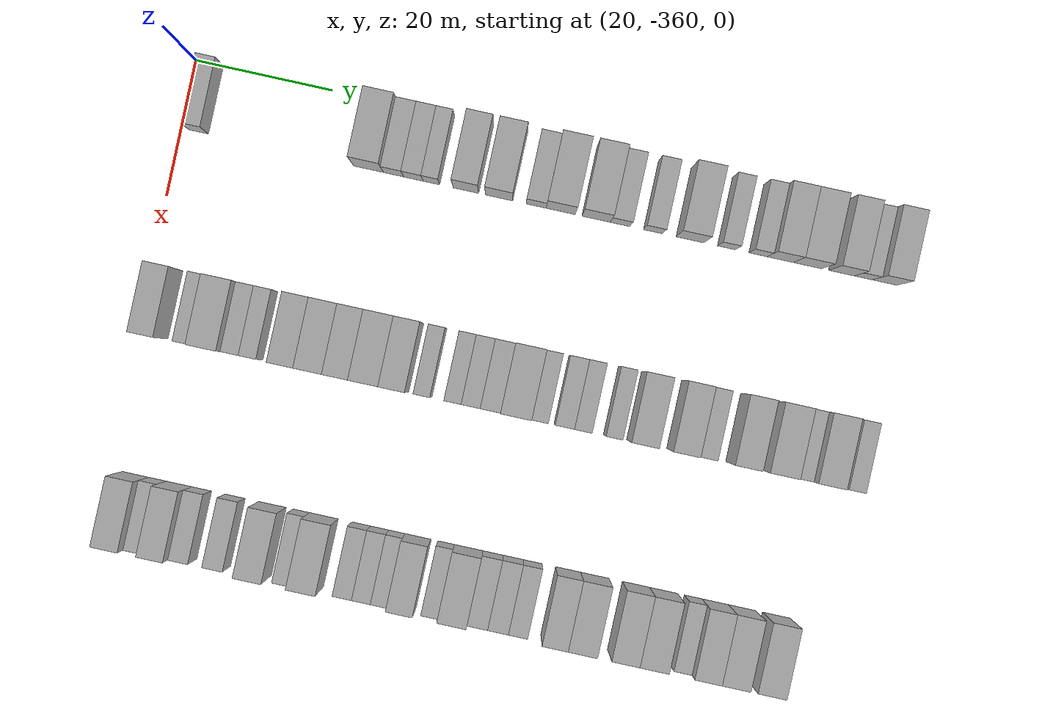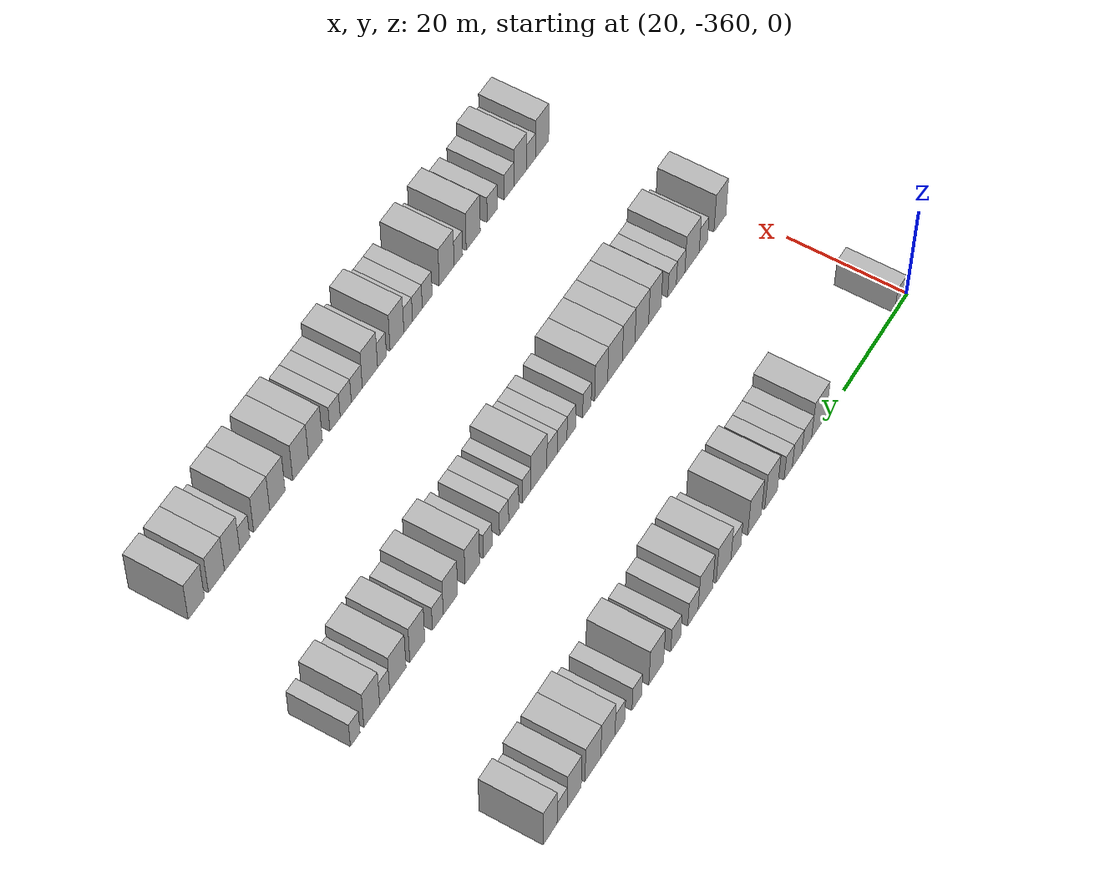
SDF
<sdf version="1.6">
 <world name="default">
  <model name="building_21">
   <static>1</static>
   <pose>25.0000 -357.4171 0 0.000000 0.000000 0.000000</pose>
   <link name="link">
    <pose>0 0 3.00 0 0 0</pose>
    <collision name="collision"><geometry><box><size>10.0000 2.8803 6.0000</size></box></geometry></collision>
    <visual name="visual">
     <cast_shadows>0</cast_shadows>
     <geometry><box><size>10.0000 2.8803 6.0000</size></box></geometry>
     <material>
      <script>
       <uri>model://HANNAS_wall/materials/scripts</uri>
       <uri>model://HANNAS_wall/materials/textures</uri>
       <name>vrc/HANNAS_wall</name>
      </script>
     </material>
    </visual>
   </link>
  </model>
  <model name="building_22">
   <static>1</static>
   <pose>25.0000 -332.4077 0 0.000000 0.000000 0.000000</pose>
   <link name="link">
    <pose>0 0 4.50 0 0 0</pose>
    <collision name="collision"><geometry><box><size>10.0000 4.3794 9.0000</size></box></geometry></collision>
    <visual name="visual">
     <cast_shadows>0</cast_shadows>
     <geometry><box><size>10.0000 4.3794 9.0000</size></box></geometry>
     <material>
      <script>
       <uri>model://HANNAS_wall/materials/scripts</uri>
       <uri>model://HANNAS_wall/materials/textures</uri>
       <name>vrc/HANNAS_wall</name>
      </script>
     </material>
    </visual>
   </link>
  </model>
  <model name="building_23">
   <static>1</static>
   <pose>25.0000 -328.7465 0 0.000000 0.000000 0.000000</pose>
   <link name="link">
    <pose>0 0 3.00 0 0 0</pose>
    <collision name="collision"><geometry><box><size>10.0000 2.9431 6.0000</size></box></geometry></collision>
    <visual name="visual">
     <cast_shadows>0</cast_shadows>
     <geometry><box><size>10.0000 2.9431 6.0000</size></box></geometry>
     <material>
      <script>
       <uri>model://HANNAS_wall/materials/scripts</uri>
       <uri>model://HANNAS_wall/materials/textures</uri>
       <name>vrc/HANNAS_wall</name>
      </script>
     </material>
    </visual>
   </link>
  </model>
  <model name="building_24">
   <static>1</static>
   <pose>25.0000 -325.8399 0 0.000000 0.000000 0.000000</pose>
   <link name="link">
    <pose>0 0 3.00 0 0 0</pose>
    <collision name="collision"><geometry><box><size>10.0000 2.8702 6.0000</size></box></geometry></collision>
    <visual name="visual">
     <cast_shadows>0</cast_shadows>
     <geometry><box><size>10.0000 2.8702 6.0000</size></box></geometry>
     <material>
      <script>
       <uri>model://HANNAS_wall/materials/scripts</uri>
       <uri>model://HANNAS_wall/materials/textures</uri>
       <name>vrc/HANNAS_wall</name>
      </script>
     </material>
    </visual>
   </link>
  </model>
  <model name="building_25">
   <static>1</static>
   <pose>25.0000 -323.1905 0 0.000000 0.000000 0.000000</pose>
   <link name="link">
    <pose>0 0 3.00 0 0 0</pose>
    <collision name="collision"><geometry><box><size>10.0000 2.4285 6.0000</size></box></geometry></collision>
    <visual name="visual">
     <cast_shadows>0</cast_shadows>
     <geometry><box><size>10.0000 2.4285 6.0000</size></box></geometry>
     <material>
      <script>
       <uri>model://HANNAS_wall/materials/scripts</uri>
       <uri>model://HANNAS_wall/materials/textures</uri>
       <name>vrc/HANNAS_wall</name>
      </script>
     </material>
    </visual>
   </link>
  </model>
  <model name="building_26">
   <static>1</static>
   <pose>25.0000 -318.1049 0 0.000000 0.000000 0.000000</pose>
   <link name="link">
    <pose>0 0 4.50 0 0 0</pose>
    <collision name="collision"><geometry><box><size>10.0000 3.7427 9.0000</size></box></geometry></collision>
    <visual name="visual">
     <cast_shadows>0</cast_shadows>
     <geometry><box><size>10.0000 3.7427 9.0000</size></box></geometry>
     <material>
      <script>
       <uri>model://HANNAS_wall/materials/scripts</uri>
       <uri>model://HANNAS_wall/materials/textures</uri>
       <name>vrc/HANNAS_wall</name>
      </script>
     </material>
    </visual>
   </link>
  </model>
  <model name="building_27">
   <static>1</static>
   <pose>25.0000 -313.2380 0 0.000000 0.000000 0.000000</pose>
   <link name="link">
    <pose>0 0 4.50 0 0 0</pose>
    <collision name="collision"><geometry><box><size>10.0000 3.9911 9.0000</size></box></geometry></collision>
    <visual name="visual">
     <cast_shadows>0</cast_shadows>
     <geometry><box><size>10.0000 3.9911 9.0000</size></box></geometry>
     <material>
      <script>
       <uri>model://HANNAS_wall/materials/scripts</uri>
       <uri>model://HANNAS_wall/materials/textures</uri>
       <name>vrc/HANNAS_wall</name>
      </script>
     </material>
    </visual>
   </link>
  </model>
  <model name="building_28">
   <static>1</static>
   <pose>25.0000 -307.7797 0 0.000000 0.000000 0.000000</pose>
   <link name="link">
    <pose>0 0 3.00 0 0 0</pose>
    <collision name="collision"><geometry><box><size>10.0000 2.9255 6.0000</size></box></geometry></collision>
    <visual name="visual">
     <cast_shadows>0</cast_shadows>
     <geometry><box><size>10.0000 2.9255 6.0000</size></box></geometry>
     <material>
      <script>
       <uri>model://HANNAS_wall/materials/scripts</uri>
       <uri>model://HANNAS_wall/materials/textures</uri>
       <name>vrc/HANNAS_wall</name>
      </script>
     </material>
    </visual>
   </link>
  </model>
  <model name="building_29">
   <static>1</static>
   <pose>25.0000 -304.1932 0 0.000000 0.000000 0.000000</pose>
   <link name="link">
    <pose>0 0 4.50 0 0 0</pose>
    <collision name="collision"><geometry><box><size>10.0000 4.2475 9.0000</size></box></geometry></collision>
    <visual name="visual">
     <cast_shadows>0</cast_shadows>
     <geometry><box><size>10.0000 4.2475 9.0000</size></box></geometry>
     <material>
      <script>
       <uri>model://HANNAS_wall/materials/scripts</uri>
       <uri>model://HANNAS_wall/materials/textures</uri>
       <name>vrc/HANNAS_wall</name>
      </script>
     </material>
    </visual>
   </link>
  </model>
  <model name="building_30">
   <static>1</static>
   <pose>25.0000 -298.9964 0 0.000000 0.000000 0.000000</pose>
   <link name="link">
    <pose>0 0 4.50 0 0 0</pose>
    <collision name="collision"><geometry><box><size>10.0000 4.1460 9.0000</size></box></geometry></collision>
    <visual name="visual">
     <cast_shadows>0</cast_shadows>
     <geometry><box><size>10.0000 4.1460 9.0000</size></box></geometry>
     <material>
      <script>
       <uri>model://HANNAS_wall/materials/scripts</uri>
       <uri>model://HANNAS_wall/materials/textures</uri>
       <name>vrc/HANNAS_wall</name>
      </script>
     </material>
    </visual>
   </link>
  </model>
  <model name="building_31">
   <static>1</static>
   <pose>25.0000 -295.4681 0 0.000000 0.000000 0.000000</pose>
   <link name="link">
    <pose>0 0 3.00 0 0 0</pose>
    <collision name="collision"><geometry><box><size>10.0000 2.9106 6.0000</size></box></geometry></collision>
    <visual name="visual">
     <cast_shadows>0</cast_shadows>
     <geometry><box><size>10.0000 2.9106 6.0000</size></box></geometry>
     <material>
      <script>
       <uri>model://HANNAS_wall/materials/scripts</uri>
       <uri>model://HANNAS_wall/materials/textures</uri>
       <name>vrc/HANNAS_wall</name>
      </script>
     </material>
    </visual>
   </link>
  </model>
  <model name="building_32">
   <static>1</static>
   <pose>25.0000 -290.6160 0 0.000000 0.000000 0.000000</pose>
   <link name="link">
    <pose>0 0 3.00 0 0 0</pose>
    <collision name="collision"><geometry><box><size>10.0000 2.7937 6.0000</size></box></geometry></collision>
    <visual name="visual">
     <cast_shadows>0</cast_shadows>
     <geometry><box><size>10.0000 2.7937 6.0000</size></box></geometry>
     <material>
      <script>
       <uri>model://HANNAS_wall/materials/scripts</uri>
       <uri>model://HANNAS_wall/materials/textures</uri>
       <name>vrc/HANNAS_wall</name>
      </script>
     </material>
    </visual>
   </link>
  </model>
  <model name="building_33">
   <static>1</static>
   <pose>25.0000 -285.1777 0 0.000000 0.000000 0.000000</pose>
   <link name="link">
    <pose>0 0 4.50 0 0 0</pose>
    <collision name="collision"><geometry><box><size>10.0000 4.0829 9.0000</size></box></geometry></collision>
    <visual name="visual">
     <cast_shadows>0</cast_shadows>
     <geometry><box><size>10.0000 4.0829 9.0000</size></box></geometry>
     <material>
      <script>
       <uri>model://HANNAS_wall/materials/scripts</uri>
       <uri>model://HANNAS_wall/materials/textures</uri>
       <name>vrc/HANNAS_wall</name>
      </script>
     </material>
    </visual>
   </link>
  </model>
  <model name="building_34">
   <static>1</static>
   <pose>25.0000 -279.8225 0 0.000000 0.000000 0.000000</pose>
   <link name="link">
    <pose>0 0 3.00 0 0 0</pose>
    <collision name="collision"><geometry><box><size>10.0000 2.6276 6.0000</size></box></geometry></collision>
    <visual name="visual">
     <cast_shadows>0</cast_shadows>
     <geometry><box><size>10.0000 2.6276 6.0000</size></box></geometry>
     <material>
      <script>
       <uri>model://HANNAS_wall/materials/scripts</uri>
       <uri>model://HANNAS_wall/materials/textures</uri>
       <name>vrc/HANNAS_wall</name>
      </script>
     </material>
    </visual>
   </link>
  </model>
  <model name="building_35">
   <static>1</static>
   <pose>25.0000 -275.1801 0 0.000000 0.000000 0.000000</pose>
   <link name="link">
    <pose>0 0 3.00 0 0 0</pose>
    <collision name="collision"><geometry><box><size>10.0000 2.6573 6.0000</size></box></geometry></collision>
    <visual name="visual">
     <cast_shadows>0</cast_shadows>
     <geometry><box><size>10.0000 2.6573 6.0000</size></box></geometry>
     <material>
      <script>
       <uri>model://HANNAS_wall/materials/scripts</uri>
       <uri>model://HANNAS_wall/materials/textures</uri>
       <name>vrc/HANNAS_wall</name>
      </script>
     </material>
    </visual>
   </link>
  </model>
  <model name="building_36">
   <static>1</static>
   <pose>25.0000 -271.9345 0 0.000000 0.000000 0.000000</pose>
   <link name="link">
    <pose>0 0 4.50 0 0 0</pose>
    <collision name="collision"><geometry><box><size>10.0000 3.8339 9.0000</size></box></geometry></collision>
    <visual name="visual">
     <cast_shadows>0</cast_shadows>
     <geometry><box><size>10.0000 3.8339 9.0000</size></box></geometry>
     <material>
      <script>
       <uri>model://HANNAS_wall/materials/scripts</uri>
       <uri>model://HANNAS_wall/materials/textures</uri>
       <name>vrc/HANNAS_wall</name>
      </script>
     </material>
    </visual>
   </link>
  </model>
  <model name="building_37">
   <static>1</static>
   <pose>25.0000 -267.9023 0 0.000000 0.000000 0.000000</pose>
   <link name="link">
    <pose>0 0 4.50 0 0 0</pose>
    <collision name="collision"><geometry><box><size>10.0000 4.2304 9.0000</size></box></geometry></collision>
    <visual name="visual">
     <cast_shadows>0</cast_shadows>
     <geometry><box><size>10.0000 4.2304 9.0000</size></box></geometry>
     <material>
      <script>
       <uri>model://HANNAS_wall/materials/scripts</uri>
       <uri>model://HANNAS_wall/materials/textures</uri>
       <name>vrc/HANNAS_wall</name>
      </script>
     </material>
    </visual>
   </link>
  </model>
  <model name="building_38">
   <static>1</static>
   <pose>25.0000 -262.9214 0 0.000000 0.000000 0.000000</pose>
   <link name="link">
    <pose>0 0 4.50 0 0 0</pose>
    <collision name="collision"><geometry><box><size>10.0000 3.7315 9.0000</size></box></geometry></collision>
    <visual name="visual">
     <cast_shadows>0</cast_shadows>
     <geometry><box><size>10.0000 3.7315 9.0000</size></box></geometry>
     <material>
      <script>
       <uri>model://HANNAS_wall/materials/scripts</uri>
       <uri>model://HANNAS_wall/materials/textures</uri>
       <name>vrc/HANNAS_wall</name>
      </script>
     </material>
    </visual>
   </link>
  </model>
  <model name="building_39">
   <static>1</static>
   <pose>25.0000 -259.7239 0 0.000000 0.000000 0.000000</pose>
   <link name="link">
    <pose>0 0 3.00 0 0 0</pose>
    <collision name="collision"><geometry><box><size>10.0000 2.6636 6.0000</size></box></geometry></collision>
    <visual name="visual">
     <cast_shadows>0</cast_shadows>
     <geometry><box><size>10.0000 2.6636 6.0000</size></box></geometry>
     <material>
      <script>
       <uri>model://HANNAS_wall/materials/scripts</uri>
       <uri>model://HANNAS_wall/materials/textures</uri>
       <name>vrc/HANNAS_wall</name>
      </script>
     </material>
    </visual>
   </link>
  </model>
  <model name="building_40">
   <static>1</static>
   <pose>25.0000 -256.5775 0 0.000000 0.000000 0.000000</pose>
   <link name="link">
    <pose>0 0 4.50 0 0 0</pose>
    <collision name="collision"><geometry><box><size>10.0000 3.6291 9.0000</size></box></geometry></collision>
    <visual name="visual">
     <cast_shadows>0</cast_shadows>
     <geometry><box><size>10.0000 3.6291 9.0000</size></box></geometry>
     <material>
      <script>
       <uri>model://HANNAS_wall/materials/scripts</uri>
       <uri>model://HANNAS_wall/materials/textures</uri>
       <name>vrc/HANNAS_wall</name>
      </script>
     </material>
    </visual>
   </link>
  </model>
  <model name="building_235">
   <static>1</static>
   <pose>55.0000 -357.1866 0 0.000000 0.000000 0.000000</pose>
   <link name="link">
    <pose>0 0 4.50 0 0 0</pose>
    <collision name="collision"><geometry><box><size>10.0000 3.6692 9.0000</size></box></geometry></collision>
    <visual name="visual">
     <cast_shadows>0</cast_shadows>
     <geometry><box><size>10.0000 3.6692 9.0000</size></box></geometry>
     <material>
      <script>
       <uri>model://HANNAS_wall/materials/scripts</uri>
       <uri>model://HANNAS_wall/materials/textures</uri>
       <name>vrc/HANNAS_wall</name>
      </script>
     </material>
    </visual>
   </link>
  </model>
  <model name="building_236">
   <static>1</static>
   <pose>55.0000 -352.0828 0 0.000000 0.000000 0.000000</pose>
   <link name="link">
    <pose>0 0 3.00 0 0 0</pose>
    <collision name="collision"><geometry><box><size>10.0000 2.5383 6.0000</size></box></geometry></collision>
    <visual name="visual">
     <cast_shadows>0</cast_shadows>
     <geometry><box><size>10.0000 2.5383 6.0000</size></box></geometry>
     <material>
      <script>
       <uri>model://HANNAS_wall/materials/scripts</uri>
       <uri>model://HANNAS_wall/materials/textures</uri>
       <name>vrc/HANNAS_wall</name>
      </script>
     </material>
    </visual>
   </link>
  </model>
  <model name="building_237">
   <static>1</static>
   <pose>55.0000 -348.6517 0 0.000000 0.000000 0.000000</pose>
   <link name="link">
    <pose>0 0 4.50 0 0 0</pose>
    <collision name="collision"><geometry><box><size>10.0000 4.3240 9.0000</size></box></geometry></collision>
    <visual name="visual">
     <cast_shadows>0</cast_shadows>
     <geometry><box><size>10.0000 4.3240 9.0000</size></box></geometry>
     <material>
      <script>
       <uri>model://HANNAS_wall/materials/scripts</uri>
       <uri>model://HANNAS_wall/materials/textures</uri>
       <name>vrc/HANNAS_wall</name>
      </script>
     </material>
    </visual>
   </link>
  </model>
  <model name="building_238">
   <static>1</static>
   <pose>55.0000 -345.2005 0 0.000000 0.000000 0.000000</pose>
   <link name="link">
    <pose>0 0 3.00 0 0 0</pose>
    <collision name="collision"><geometry><box><size>10.0000 2.5784 6.0000</size></box></geometry></collision>
    <visual name="visual">
     <cast_shadows>0</cast_shadows>
     <geometry><box><size>10.0000 2.5784 6.0000</size></box></geometry>
     <material>
      <script>
       <uri>model://HANNAS_wall/materials/scripts</uri>
       <uri>model://HANNAS_wall/materials/textures</uri>
       <name>vrc/HANNAS_wall</name>
      </script>
     </material>
    </visual>
   </link>
  </model>
  <model name="building_239">
   <static>1</static>
   <pose>55.0000 -342.6469 0 0.000000 0.000000 0.000000</pose>
   <link name="link">
    <pose>0 0 3.00 0 0 0</pose>
    <collision name="collision"><geometry><box><size>10.0000 2.5287 6.0000</size></box></geometry></collision>
    <visual name="visual">
     <cast_shadows>0</cast_shadows>
     <geometry><box><size>10.0000 2.5287 6.0000</size></box></geometry>
     <material>
      <script>
       <uri>model://HANNAS_wall/materials/scripts</uri>
       <uri>model://HANNAS_wall/materials/textures</uri>
       <name>vrc/HANNAS_wall</name>
      </script>
     </material>
    </visual>
   </link>
  </model>
  <model name="building_240">
   <static>1</static>
   <pose>55.0000 -337.5148 0 0.000000 0.000000 0.000000</pose>
   <link name="link">
    <pose>0 0 4.50 0 0 0</pose>
    <collision name="collision"><geometry><box><size>10.0000 3.7356 9.0000</size></box></geometry></collision>
    <visual name="visual">
     <cast_shadows>0</cast_shadows>
     <geometry><box><size>10.0000 3.7356 9.0000</size></box></geometry>
     <material>
      <script>
       <uri>model://HANNAS_wall/materials/scripts</uri>
       <uri>model://HANNAS_wall/materials/textures</uri>
       <name>vrc/HANNAS_wall</name>
      </script>
     </material>
    </visual>
   </link>
  </model>
  <model name="building_241">
   <static>1</static>
   <pose>55.0000 -333.6295 0 0.000000 0.000000 0.000000</pose>
   <link name="link">
    <pose>0 0 4.50 0 0 0</pose>
    <collision name="collision"><geometry><box><size>10.0000 4.0349 9.0000</size></box></geometry></collision>
    <visual name="visual">
     <cast_shadows>0</cast_shadows>
     <geometry><box><size>10.0000 4.0349 9.0000</size></box></geometry>
     <material>
      <script>
       <uri>model://HANNAS_wall/materials/scripts</uri>
       <uri>model://HANNAS_wall/materials/textures</uri>
       <name>vrc/HANNAS_wall</name>
      </script>
     </material>
    </visual>
   </link>
  </model>
  <model name="building_242">
   <static>1</static>
   <pose>55.0000 -329.7769 0 0.000000 0.000000 0.000000</pose>
   <link name="link">
    <pose>0 0 4.50 0 0 0</pose>
    <collision name="collision"><geometry><box><size>10.0000 3.6704 9.0000</size></box></geometry></collision>
    <visual name="visual">
     <cast_shadows>0</cast_shadows>
     <geometry><box><size>10.0000 3.6704 9.0000</size></box></geometry>
     <material>
      <script>
       <uri>model://HANNAS_wall/materials/scripts</uri>
       <uri>model://HANNAS_wall/materials/textures</uri>
       <name>vrc/HANNAS_wall</name>
      </script>
     </material>
    </visual>
   </link>
  </model>
  <model name="building_243">
   <static>1</static>
   <pose>55.0000 -325.8154 0 0.000000 0.000000 0.000000</pose>
   <link name="link">
    <pose>0 0 4.50 0 0 0</pose>
    <collision name="collision"><geometry><box><size>10.0000 4.2526 9.0000</size></box></geometry></collision>
    <visual name="visual">
     <cast_shadows>0</cast_shadows>
     <geometry><box><size>10.0000 4.2526 9.0000</size></box></geometry>
     <material>
      <script>
       <uri>model://HANNAS_wall/materials/scripts</uri>
       <uri>model://HANNAS_wall/materials/textures</uri>
       <name>vrc/HANNAS_wall</name>
      </script>
     </material>
    </visual>
   </link>
  </model>
  <model name="building_244">
   <static>1</static>
   <pose>55.0000 -321.8098 0 0.000000 0.000000 0.000000</pose>
   <link name="link">
    <pose>0 0 4.50 0 0 0</pose>
    <collision name="collision"><geometry><box><size>10.0000 3.7587 9.0000</size></box></geometry></collision>
    <visual name="visual">
     <cast_shadows>0</cast_shadows>
     <geometry><box><size>10.0000 3.7587 9.0000</size></box></geometry>
     <material>
      <script>
       <uri>model://HANNAS_wall/materials/scripts</uri>
       <uri>model://HANNAS_wall/materials/textures</uri>
       <name>vrc/HANNAS_wall</name>
      </script>
     </material>
    </visual>
   </link>
  </model>
  <model name="building_245">
   <static>1</static>
   <pose>55.0000 -317.7284 0 0.000000 0.000000 0.000000</pose>
   <link name="link">
    <pose>0 0 3.00 0 0 0</pose>
    <collision name="collision"><geometry><box><size>10.0000 2.4040 6.0000</size></box></geometry></collision>
    <visual name="visual">
     <cast_shadows>0</cast_shadows>
     <geometry><box><size>10.0000 2.4040 6.0000</size></box></geometry>
     <material>
      <script>
       <uri>model://HANNAS_wall/materials/scripts</uri>
       <uri>model://HANNAS_wall/materials/textures</uri>
       <name>vrc/HANNAS_wall</name>
      </script>
     </material>
    </visual>
   </link>
  </model>
  <model name="building_246">
   <static>1</static>
   <pose>55.0000 -313.2908 0 0.000000 0.000000 0.000000</pose>
   <link name="link">
    <pose>0 0 3.00 0 0 0</pose>
    <collision name="collision"><geometry><box><size>10.0000 2.4712 6.0000</size></box></geometry></collision>
    <visual name="visual">
     <cast_shadows>0</cast_shadows>
     <geometry><box><size>10.0000 2.4712 6.0000</size></box></geometry>
     <material>
      <script>
       <uri>model://HANNAS_wall/materials/scripts</uri>
       <uri>model://HANNAS_wall/materials/textures</uri>
       <name>vrc/HANNAS_wall</name>
      </script>
     </material>
    </visual>
   </link>
  </model>
  <model name="building_247">
   <static>1</static>
   <pose>55.0000 -310.6925 0 0.000000 0.000000 0.000000</pose>
   <link name="link">
    <pose>0 0 3.00 0 0 0</pose>
    <collision name="collision"><geometry><box><size>10.0000 2.7253 6.0000</size></box></geometry></collision>
    <visual name="visual">
     <cast_shadows>0</cast_shadows>
     <geometry><box><size>10.0000 2.7253 6.0000</size></box></geometry>
     <material>
      <script>
       <uri>model://HANNAS_wall/materials/scripts</uri>
       <uri>model://HANNAS_wall/materials/textures</uri>
       <name>vrc/HANNAS_wall</name>
      </script>
     </material>
    </visual>
   </link>
  </model>
  <model name="building_248">
   <static>1</static>
   <pose>55.0000 -307.8720 0 0.000000 0.000000 0.000000</pose>
   <link name="link">
    <pose>0 0 3.00 0 0 0</pose>
    <collision name="collision"><geometry><box><size>10.0000 2.9159 6.0000</size></box></geometry></collision>
    <visual name="visual">
     <cast_shadows>0</cast_shadows>
     <geometry><box><size>10.0000 2.9159 6.0000</size></box></geometry>
     <material>
      <script>
       <uri>model://HANNAS_wall/materials/scripts</uri>
       <uri>model://HANNAS_wall/materials/textures</uri>
       <name>vrc/HANNAS_wall</name>
      </script>
     </material>
    </visual>
   </link>
  </model>
  <model name="building_249">
   <static>1</static>
   <pose>55.0000 -304.2131 0 0.000000 0.000000 0.000000</pose>
   <link name="link">
    <pose>0 0 4.50 0 0 0</pose>
    <collision name="collision"><geometry><box><size>10.0000 4.4018 9.0000</size></box></geometry></collision>
    <visual name="visual">
     <cast_shadows>0</cast_shadows>
     <geometry><box><size>10.0000 4.4018 9.0000</size></box></geometry>
     <material>
      <script>
       <uri>model://HANNAS_wall/materials/scripts</uri>
       <uri>model://HANNAS_wall/materials/textures</uri>
       <name>vrc/HANNAS_wall</name>
      </script>
     </material>
    </visual>
   </link>
  </model>
  <model name="building_250">
   <static>1</static>
   <pose>55.0000 -300.7984 0 0.000000 0.000000 0.000000</pose>
   <link name="link">
    <pose>0 0 3.00 0 0 0</pose>
    <collision name="collision"><geometry><box><size>10.0000 2.4277 6.0000</size></box></geometry></collision>
    <visual name="visual">
     <cast_shadows>0</cast_shadows>
     <geometry><box><size>10.0000 2.4277 6.0000</size></box></geometry>
     <material>
      <script>
       <uri>model://HANNAS_wall/materials/scripts</uri>
       <uri>model://HANNAS_wall/materials/textures</uri>
       <name>vrc/HANNAS_wall</name>
      </script>
     </material>
    </visual>
   </link>
  </model>
  <model name="building_251">
   <static>1</static>
   <pose>55.0000 -297.2077 0 0.000000 0.000000 0.000000</pose>
   <link name="link">
    <pose>0 0 3.00 0 0 0</pose>
    <collision name="collision"><geometry><box><size>10.0000 2.7535 6.0000</size></box></geometry></collision>
    <visual name="visual">
     <cast_shadows>0</cast_shadows>
     <geometry><box><size>10.0000 2.7535 6.0000</size></box></geometry>
     <material>
      <script>
       <uri>model://HANNAS_wall/materials/scripts</uri>
       <uri>model://HANNAS_wall/materials/textures</uri>
       <name>vrc/HANNAS_wall</name>
      </script>
     </material>
    </visual>
   </link>
  </model>
  <model name="building_252">
   <static>1</static>
   <pose>55.0000 -294.5745 0 0.000000 0.000000 0.000000</pose>
   <link name="link">
    <pose>0 0 3.00 0 0 0</pose>
    <collision name="collision"><geometry><box><size>10.0000 2.5130 6.0000</size></box></geometry></collision>
    <visual name="visual">
     <cast_shadows>0</cast_shadows>
     <geometry><box><size>10.0000 2.5130 6.0000</size></box></geometry>
     <material>
      <script>
       <uri>model://HANNAS_wall/materials/scripts</uri>
       <uri>model://HANNAS_wall/materials/textures</uri>
       <name>vrc/HANNAS_wall</name>
      </script>
     </material>
    </visual>
   </link>
  </model>
  <model name="building_253">
   <static>1</static>
   <pose>55.0000 -290.1171 0 0.000000 0.000000 0.000000</pose>
   <link name="link">
    <pose>0 0 3.00 0 0 0</pose>
    <collision name="collision"><geometry><box><size>10.0000 2.4018 6.0000</size></box></geometry></collision>
    <visual name="visual">
     <cast_shadows>0</cast_shadows>
     <geometry><box><size>10.0000 2.4018 6.0000</size></box></geometry>
     <material>
      <script>
       <uri>model://HANNAS_wall/materials/scripts</uri>
       <uri>model://HANNAS_wall/materials/textures</uri>
       <name>vrc/HANNAS_wall</name>
      </script>
     </material>
    </visual>
   </link>
  </model>
  <model name="building_254">
   <static>1</static>
   <pose>55.0000 -285.9679 0 0.000000 0.000000 0.000000</pose>
   <link name="link">
    <pose>0 0 4.50 0 0 0</pose>
    <collision name="collision"><geometry><box><size>10.0000 3.8965 9.0000</size></box></geometry></collision>
    <visual name="visual">
     <cast_shadows>0</cast_shadows>
     <geometry><box><size>10.0000 3.8965 9.0000</size></box></geometry>
     <material>
      <script>
       <uri>model://HANNAS_wall/materials/scripts</uri>
       <uri>model://HANNAS_wall/materials/textures</uri>
       <name>vrc/HANNAS_wall</name>
      </script>
     </material>
    </visual>
   </link>
  </model>
  <model name="building_255">
   <static>1</static>
   <pose>55.0000 -280.1066 0 0.000000 0.000000 0.000000</pose>
   <link name="link">
    <pose>0 0 4.50 0 0 0</pose>
    <collision name="collision"><geometry><box><size>10.0000 3.8262 9.0000</size></box></geometry></collision>
    <visual name="visual">
     <cast_shadows>0</cast_shadows>
     <geometry><box><size>10.0000 3.8262 9.0000</size></box></geometry>
     <material>
      <script>
       <uri>model://HANNAS_wall/materials/scripts</uri>
       <uri>model://HANNAS_wall/materials/textures</uri>
       <name>vrc/HANNAS_wall</name>
      </script>
     </material>
    </visual>
   </link>
  </model>
  <model name="building_256">
   <static>1</static>
   <pose>55.0000 -276.7613 0 0.000000 0.000000 0.000000</pose>
   <link name="link">
    <pose>0 0 3.00 0 0 0</pose>
    <collision name="collision"><geometry><box><size>10.0000 2.8644 6.0000</size></box></geometry></collision>
    <visual name="visual">
     <cast_shadows>0</cast_shadows>
     <geometry><box><size>10.0000 2.8644 6.0000</size></box></geometry>
     <material>
      <script>
       <uri>model://HANNAS_wall/materials/scripts</uri>
       <uri>model://HANNAS_wall/materials/textures</uri>
       <name>vrc/HANNAS_wall</name>
      </script>
     </material>
    </visual>
   </link>
  </model>
  <model name="building_257">
   <static>1</static>
   <pose>55.0000 -271.3697 0 0.000000 0.000000 0.000000</pose>
   <link name="link">
    <pose>0 0 4.50 0 0 0</pose>
    <collision name="collision"><geometry><box><size>10.0000 3.9187 9.0000</size></box></geometry></collision>
    <visual name="visual">
     <cast_shadows>0</cast_shadows>
     <geometry><box><size>10.0000 3.9187 9.0000</size></box></geometry>
     <material>
      <script>
       <uri>model://HANNAS_wall/materials/scripts</uri>
       <uri>model://HANNAS_wall/materials/textures</uri>
       <name>vrc/HANNAS_wall</name>
      </script>
     </material>
    </visual>
   </link>
  </model>
  <model name="building_258">
   <static>1</static>
   <pose>55.0000 -266.2897 0 0.000000 0.000000 0.000000</pose>
   <link name="link">
    <pose>0 0 4.50 0 0 0</pose>
    <collision name="collision"><geometry><box><size>10.0000 4.2413 9.0000</size></box></geometry></collision>
    <visual name="visual">
     <cast_shadows>0</cast_shadows>
     <geometry><box><size>10.0000 4.2413 9.0000</size></box></geometry>
     <material>
      <script>
       <uri>model://HANNAS_wall/materials/scripts</uri>
       <uri>model://HANNAS_wall/materials/textures</uri>
       <name>vrc/HANNAS_wall</name>
      </script>
     </material>
    </visual>
   </link>
  </model>
  <model name="building_259">
   <static>1</static>
   <pose>55.0000 -262.8922 0 0.000000 0.000000 0.000000</pose>
   <link name="link">
    <pose>0 0 3.00 0 0 0</pose>
    <collision name="collision"><geometry><box><size>10.0000 2.5537 6.0000</size></box></geometry></collision>
    <visual name="visual">
     <cast_shadows>0</cast_shadows>
     <geometry><box><size>10.0000 2.5537 6.0000</size></box></geometry>
     <material>
      <script>
       <uri>model://HANNAS_wall/materials/scripts</uri>
       <uri>model://HANNAS_wall/materials/textures</uri>
       <name>vrc/HANNAS_wall</name>
      </script>
     </material>
    </visual>
   </link>
  </model>
  <model name="building_260">
   <static>1</static>
   <pose>55.0000 -259.6027 0 0.000000 0.000000 0.000000</pose>
   <link name="link">
    <pose>0 0 4.50 0 0 0</pose>
    <collision name="collision"><geometry><box><size>10.0000 4.0253 9.0000</size></box></geometry></collision>
    <visual name="visual">
     <cast_shadows>0</cast_shadows>
     <geometry><box><size>10.0000 4.0253 9.0000</size></box></geometry>
     <material>
      <script>
       <uri>model://HANNAS_wall/materials/scripts</uri>
       <uri>model://HANNAS_wall/materials/textures</uri>
       <name>vrc/HANNAS_wall</name>
      </script>
     </material>
    </visual>
   </link>
  </model>
  <model name="building_261">
   <static>1</static>
   <pose>55.0000 -255.3676 0 0.000000 0.000000 0.000000</pose>
   <link name="link">
    <pose>0 0 3.00 0 0 0</pose>
    <collision name="collision"><geometry><box><size>10.0000 2.4451 6.0000</size></box></geometry></collision>
    <visual name="visual">
     <cast_shadows>0</cast_shadows>
     <geometry><box><size>10.0000 2.4451 6.0000</size></box></geometry>
     <material>
      <script>
       <uri>model://HANNAS_wall/materials/scripts</uri>
       <uri>model://HANNAS_wall/materials/textures</uri>
       <name>vrc/HANNAS_wall</name>
      </script>
     </material>
    </visual>
   </link>
  </model>
  <model name="building_469">
   <static>1</static>
   <pose>85.0000 -355.6983 0 0.000000 0.000000 0.000000</pose>
   <link name="link">
    <pose>0 0 4.50 0 0 0</pose>
    <collision name="collision"><geometry><box><size>10.0000 3.8692 9.0000</size></box></geometry></collision>
    <visual name="visual">
     <cast_shadows>0</cast_shadows>
     <geometry><box><size>10.0000 3.8692 9.0000</size></box></geometry>
     <material>
      <script>
       <uri>model://HANNAS_wall/materials/scripts</uri>
       <uri>model://HANNAS_wall/materials/textures</uri>
       <name>vrc/HANNAS_wall</name>
      </script>
     </material>
    </visual>
   </link>
  </model>
  <model name="building_470">
   <static>1</static>
   <pose>85.0000 -352.4698 0 0.000000 0.000000 0.000000</pose>
   <link name="link">
    <pose>0 0 3.00 0 0 0</pose>
    <collision name="collision"><geometry><box><size>10.0000 2.5878 6.0000</size></box></geometry></collision>
    <visual name="visual">
     <cast_shadows>0</cast_shadows>
     <geometry><box><size>10.0000 2.5878 6.0000</size></box></geometry>
     <material>
      <script>
       <uri>model://HANNAS_wall/materials/scripts</uri>
       <uri>model://HANNAS_wall/materials/textures</uri>
       <name>vrc/HANNAS_wall</name>
      </script>
     </material>
    </visual>
   </link>
  </model>
  <model name="building_471">
   <static>1</static>
   <pose>85.0000 -349.2790 0 0.000000 0.000000 0.000000</pose>
   <link name="link">
    <pose>0 0 4.50 0 0 0</pose>
    <collision name="collision"><geometry><box><size>10.0000 3.7938 9.0000</size></box></geometry></collision>
    <visual name="visual">
     <cast_shadows>0</cast_shadows>
     <geometry><box><size>10.0000 3.7938 9.0000</size></box></geometry>
     <material>
      <script>
       <uri>model://HANNAS_wall/materials/scripts</uri>
       <uri>model://HANNAS_wall/materials/textures</uri>
       <name>vrc/HANNAS_wall</name>
      </script>
     </material>
    </visual>
   </link>
  </model>
  <model name="building_472">
   <static>1</static>
   <pose>85.0000 -345.9546 0 0.000000 0.000000 0.000000</pose>
   <link name="link">
    <pose>0 0 3.00 0 0 0</pose>
    <collision name="collision"><geometry><box><size>10.0000 2.8549 6.0000</size></box></geometry></collision>
    <visual name="visual">
     <cast_shadows>0</cast_shadows>
     <geometry><box><size>10.0000 2.8549 6.0000</size></box></geometry>
     <material>
      <script>
       <uri>model://HANNAS_wall/materials/scripts</uri>
       <uri>model://HANNAS_wall/materials/textures</uri>
       <name>vrc/HANNAS_wall</name>
      </script>
     </material>
    </visual>
   </link>
  </model>
  <model name="building_473">
   <static>1</static>
   <pose>85.0000 -341.0548 0 0.000000 0.000000 0.000000</pose>
   <link name="link">
    <pose>0 0 3.00 0 0 0</pose>
    <collision name="collision"><geometry><box><size>10.0000 2.9446 6.0000</size></box></geometry></collision>
    <visual name="visual">
     <cast_shadows>0</cast_shadows>
     <geometry><box><size>10.0000 2.9446 6.0000</size></box></geometry>
     <material>
      <script>
       <uri>model://HANNAS_wall/materials/scripts</uri>
       <uri>model://HANNAS_wall/materials/textures</uri>
       <name>vrc/HANNAS_wall</name>
      </script>
     </material>
    </visual>
   </link>
  </model>
  <model name="building_474">
   <static>1</static>
   <pose>85.0000 -335.5613 0 0.000000 0.000000 0.000000</pose>
   <link name="link">
    <pose>0 0 4.50 0 0 0</pose>
    <collision name="collision"><geometry><box><size>10.0000 4.0424 9.0000</size></box></geometry></collision>
    <visual name="visual">
     <cast_shadows>0</cast_shadows>
     <geometry><box><size>10.0000 4.0424 9.0000</size></box></geometry>
     <material>
      <script>
       <uri>model://HANNAS_wall/materials/scripts</uri>
       <uri>model://HANNAS_wall/materials/textures</uri>
       <name>vrc/HANNAS_wall</name>
      </script>
     </material>
    </visual>
   </link>
  </model>
  <model name="building_475">
   <static>1</static>
   <pose>85.0000 -331.3227 0 0.000000 0.000000 0.000000</pose>
   <link name="link">
    <pose>0 0 3.00 0 0 0</pose>
    <collision name="collision"><geometry><box><size>10.0000 2.4349 6.0000</size></box></geometry></collision>
    <visual name="visual">
     <cast_shadows>0</cast_shadows>
     <geometry><box><size>10.0000 2.4349 6.0000</size></box></geometry>
     <material>
      <script>
       <uri>model://HANNAS_wall/materials/scripts</uri>
       <uri>model://HANNAS_wall/materials/textures</uri>
       <name>vrc/HANNAS_wall</name>
      </script>
     </material>
    </visual>
   </link>
  </model>
  <model name="building_476">
   <static>1</static>
   <pose>85.0000 -328.0037 0 0.000000 0.000000 0.000000</pose>
   <link name="link">
    <pose>0 0 4.50 0 0 0</pose>
    <collision name="collision"><geometry><box><size>10.0000 4.2031 9.0000</size></box></geometry></collision>
    <visual name="visual">
     <cast_shadows>0</cast_shadows>
     <geometry><box><size>10.0000 4.2031 9.0000</size></box></geometry>
     <material>
      <script>
       <uri>model://HANNAS_wall/materials/scripts</uri>
       <uri>model://HANNAS_wall/materials/textures</uri>
       <name>vrc/HANNAS_wall</name>
      </script>
     </material>
    </visual>
   </link>
  </model>
  <model name="building_477">
   <static>1</static>
   <pose>85.0000 -322.5182 0 0.000000 0.000000 0.000000</pose>
   <link name="link">
    <pose>0 0 3.00 0 0 0</pose>
    <collision name="collision"><geometry><box><size>10.0000 2.7679 6.0000</size></box></geometry></collision>
    <visual name="visual">
     <cast_shadows>0</cast_shadows>
     <geometry><box><size>10.0000 2.7679 6.0000</size></box></geometry>
     <material>
      <script>
       <uri>model://HANNAS_wall/materials/scripts</uri>
       <uri>model://HANNAS_wall/materials/textures</uri>
       <name>vrc/HANNAS_wall</name>
      </script>
     </material>
    </visual>
   </link>
  </model>
  <model name="building_478">
   <static>1</static>
   <pose>85.0000 -319.7849 0 0.000000 0.000000 0.000000</pose>
   <link name="link">
    <pose>0 0 3.00 0 0 0</pose>
    <collision name="collision"><geometry><box><size>10.0000 2.6987 6.0000</size></box></geometry></collision>
    <visual name="visual">
     <cast_shadows>0</cast_shadows>
     <geometry><box><size>10.0000 2.6987 6.0000</size></box></geometry>
     <material>
      <script>
       <uri>model://HANNAS_wall/materials/scripts</uri>
       <uri>model://HANNAS_wall/materials/textures</uri>
       <name>vrc/HANNAS_wall</name>
      </script>
     </material>
    </visual>
   </link>
  </model>
  <model name="building_479">
   <static>1</static>
   <pose>85.0000 -317.2337 0 0.000000 0.000000 0.000000</pose>
   <link name="link">
    <pose>0 0 3.00 0 0 0</pose>
    <collision name="collision"><geometry><box><size>10.0000 2.4037 6.0000</size></box></geometry></collision>
    <visual name="visual">
     <cast_shadows>0</cast_shadows>
     <geometry><box><size>10.0000 2.4037 6.0000</size></box></geometry>
     <material>
      <script>
       <uri>model://HANNAS_wall/materials/scripts</uri>
       <uri>model://HANNAS_wall/materials/textures</uri>
       <name>vrc/HANNAS_wall</name>
      </script>
     </material>
    </visual>
   </link>
  </model>
  <model name="building_480">
   <static>1</static>
   <pose>85.0000 -314.1340 0 0.000000 0.000000 0.000000</pose>
   <link name="link">
    <pose>0 0 4.50 0 0 0</pose>
    <collision name="collision"><geometry><box><size>10.0000 3.7957 9.0000</size></box></geometry></collision>
    <visual name="visual">
     <cast_shadows>0</cast_shadows>
     <geometry><box><size>10.0000 3.7957 9.0000</size></box></geometry>
     <material>
      <script>
       <uri>model://HANNAS_wall/materials/scripts</uri>
       <uri>model://HANNAS_wall/materials/textures</uri>
       <name>vrc/HANNAS_wall</name>
      </script>
     </material>
    </visual>
   </link>
  </model>
  <model name="building_481">
   <static>1</static>
   <pose>85.0000 -310.0223 0 0.000000 0.000000 0.000000</pose>
   <link name="link">
    <pose>0 0 3.00 0 0 0</pose>
    <collision name="collision"><geometry><box><size>10.0000 2.4278 6.0000</size></box></geometry></collision>
    <visual name="visual">
     <cast_shadows>0</cast_shadows>
     <geometry><box><size>10.0000 2.4278 6.0000</size></box></geometry>
     <material>
      <script>
       <uri>model://HANNAS_wall/materials/scripts</uri>
       <uri>model://HANNAS_wall/materials/textures</uri>
       <name>vrc/HANNAS_wall</name>
      </script>
     </material>
    </visual>
   </link>
  </model>
  <model name="building_482">
   <static>1</static>
   <pose>85.0000 -306.7299 0 0.000000 0.000000 0.000000</pose>
   <link name="link">
    <pose>0 0 4.50 0 0 0</pose>
    <collision name="collision"><geometry><box><size>10.0000 4.1570 9.0000</size></box></geometry></collision>
    <visual name="visual">
     <cast_shadows>0</cast_shadows>
     <geometry><box><size>10.0000 4.1570 9.0000</size></box></geometry>
     <material>
      <script>
       <uri>model://HANNAS_wall/materials/scripts</uri>
       <uri>model://HANNAS_wall/materials/textures</uri>
       <name>vrc/HANNAS_wall</name>
      </script>
     </material>
    </visual>
   </link>
  </model>
  <model name="building_483">
   <static>1</static>
   <pose>85.0000 -303.1634 0 0.000000 0.000000 0.000000</pose>
   <link name="link">
    <pose>0 0 3.00 0 0 0</pose>
    <collision name="collision"><geometry><box><size>10.0000 2.9759 6.0000</size></box></geometry></collision>
    <visual name="visual">
     <cast_shadows>0</cast_shadows>
     <geometry><box><size>10.0000 2.9759 6.0000</size></box></geometry>
     <material>
      <script>
       <uri>model://HANNAS_wall/materials/scripts</uri>
       <uri>model://HANNAS_wall/materials/textures</uri>
       <name>vrc/HANNAS_wall</name>
      </script>
     </material>
    </visual>
   </link>
  </model>
  <model name="building_484">
   <static>1</static>
   <pose>85.0000 -300.1897 0 0.000000 0.000000 0.000000</pose>
   <link name="link">
    <pose>0 0 3.00 0 0 0</pose>
    <collision name="collision"><geometry><box><size>10.0000 2.9716 6.0000</size></box></geometry></collision>
    <visual name="visual">
     <cast_shadows>0</cast_shadows>
     <geometry><box><size>10.0000 2.9716 6.0000</size></box></geometry>
     <material>
      <script>
       <uri>model://HANNAS_wall/materials/scripts</uri>
       <uri>model://HANNAS_wall/materials/textures</uri>
       <name>vrc/HANNAS_wall</name>
      </script>
     </material>
    </visual>
   </link>
  </model>
  <model name="building_485">
   <static>1</static>
   <pose>85.0000 -297.3269 0 0.000000 0.000000 0.000000</pose>
   <link name="link">
    <pose>0 0 3.00 0 0 0</pose>
    <collision name="collision"><geometry><box><size>10.0000 2.7540 6.0000</size></box></geometry></collision>
    <visual name="visual">
     <cast_shadows>0</cast_shadows>
     <geometry><box><size>10.0000 2.7540 6.0000</size></box></geometry>
     <material>
      <script>
       <uri>model://HANNAS_wall/materials/scripts</uri>
       <uri>model://HANNAS_wall/materials/textures</uri>
       <name>vrc/HANNAS_wall</name>
      </script>
     </material>
    </visual>
   </link>
  </model>
  <model name="building_486">
   <static>1</static>
   <pose>85.0000 -292.1125 0 0.000000 0.000000 0.000000</pose>
   <link name="link">
    <pose>0 0 4.50 0 0 0</pose>
    <collision name="collision"><geometry><box><size>10.0000 3.6746 9.0000</size></box></geometry></collision>
    <visual name="visual">
     <cast_shadows>0</cast_shadows>
     <geometry><box><size>10.0000 3.6746 9.0000</size></box></geometry>
     <material>
      <script>
       <uri>model://HANNAS_wall/materials/scripts</uri>
       <uri>model://HANNAS_wall/materials/textures</uri>
       <name>vrc/HANNAS_wall</name>
      </script>
     </material>
    </visual>
   </link>
  </model>
  <model name="building_487">
   <static>1</static>
   <pose>85.0000 -288.2060 0 0.000000 0.000000 0.000000</pose>
   <link name="link">
    <pose>0 0 4.50 0 0 0</pose>
    <collision name="collision"><geometry><box><size>10.0000 4.1384 9.0000</size></box></geometry></collision>
    <visual name="visual">
     <cast_shadows>0</cast_shadows>
     <geometry><box><size>10.0000 4.1384 9.0000</size></box></geometry>
     <material>
      <script>
       <uri>model://HANNAS_wall/materials/scripts</uri>
       <uri>model://HANNAS_wall/materials/textures</uri>
       <name>vrc/HANNAS_wall</name>
      </script>
     </material>
    </visual>
   </link>
  </model>
  <model name="building_488">
   <static>1</static>
   <pose>85.0000 -282.1505 0 0.000000 0.000000 0.000000</pose>
   <link name="link">
    <pose>0 0 4.50 0 0 0</pose>
    <collision name="collision"><geometry><box><size>10.0000 3.9728 9.0000</size></box></geometry></collision>
    <visual name="visual">
     <cast_shadows>0</cast_shadows>
     <geometry><box><size>10.0000 3.9728 9.0000</size></box></geometry>
     <material>
      <script>
       <uri>model://HANNAS_wall/materials/scripts</uri>
       <uri>model://HANNAS_wall/materials/textures</uri>
       <name>vrc/HANNAS_wall</name>
      </script>
     </material>
    </visual>
   </link>
  </model>
  <model name="building_489">
   <static>1</static>
   <pose>85.0000 -278.0979 0 0.000000 0.000000 0.000000</pose>
   <link name="link">
    <pose>0 0 4.50 0 0 0</pose>
    <collision name="collision"><geometry><box><size>10.0000 4.1324 9.0000</size></box></geometry></collision>
    <visual name="visual">
     <cast_shadows>0</cast_shadows>
     <geometry><box><size>10.0000 4.1324 9.0000</size></box></geometry>
     <material>
      <script>
       <uri>model://HANNAS_wall/materials/scripts</uri>
       <uri>model://HANNAS_wall/materials/textures</uri>
       <name>vrc/HANNAS_wall</name>
      </script>
     </material>
    </visual>
   </link>
  </model>
  <model name="building_490">
   <static>1</static>
   <pose>85.0000 -273.7410 0 0.000000 0.000000 0.000000</pose>
   <link name="link">
    <pose>0 0 3.00 0 0 0</pose>
    <collision name="collision"><geometry><box><size>10.0000 2.5814 6.0000</size></box></geometry></collision>
    <visual name="visual">
     <cast_shadows>0</cast_shadows>
     <geometry><box><size>10.0000 2.5814 6.0000</size></box></geometry>
     <material>
      <script>
       <uri>model://HANNAS_wall/materials/scripts</uri>
       <uri>model://HANNAS_wall/materials/textures</uri>
       <name>vrc/HANNAS_wall</name>
      </script>
     </material>
    </visual>
   </link>
  </model>
  <model name="building_491">
   <static>1</static>
   <pose>85.0000 -270.5177 0 0.000000 0.000000 0.000000</pose>
   <link name="link">
    <pose>0 0 4.50 0 0 0</pose>
    <collision name="collision"><geometry><box><size>10.0000 3.8653 9.0000</size></box></geometry></collision>
    <visual name="visual">
     <cast_shadows>0</cast_shadows>
     <geometry><box><size>10.0000 3.8653 9.0000</size></box></geometry>
     <material>
      <script>
       <uri>model://HANNAS_wall/materials/scripts</uri>
       <uri>model://HANNAS_wall/materials/textures</uri>
       <name>vrc/HANNAS_wall</name>
      </script>
     </material>
    </visual>
   </link>
  </model>
  <model name="building_492">
   <static>1</static>
   <pose>85.0000 -266.5628 0 0.000000 0.000000 0.000000</pose>
   <link name="link">
    <pose>0 0 4.50 0 0 0</pose>
    <collision name="collision"><geometry><box><size>10.0000 4.0444 9.0000</size></box></geometry></collision>
    <visual name="visual">
     <cast_shadows>0</cast_shadows>
     <geometry><box><size>10.0000 4.0444 9.0000</size></box></geometry>
     <material>
      <script>
       <uri>model://HANNAS_wall/materials/scripts</uri>
       <uri>model://HANNAS_wall/materials/textures</uri>
       <name>vrc/HANNAS_wall</name>
      </script>
     </material>
    </visual>
   </link>
  </model>
  <model name="building_493">
   <static>1</static>
   <pose>85.0000 -261.5096 0 0.000000 0.000000 0.000000</pose>
   <link name="link">
    <pose>0 0 4.50 0 0 0</pose>
    <collision name="collision"><geometry><box><size>10.0000 4.0621 9.0000</size></box></geometry></collision>
    <visual name="visual">
     <cast_shadows>0</cast_shadows>
     <geometry><box><size>10.0000 4.0621 9.0000</size></box></geometry>
     <material>
      <script>
       <uri>model://HANNAS_wall/materials/scripts</uri>
       <uri>model://HANNAS_wall/materials/textures</uri>
       <name>vrc/HANNAS_wall</name>
      </script>
     </material>
    </visual>
   </link>
  </model>
 </world>
</sdf>
